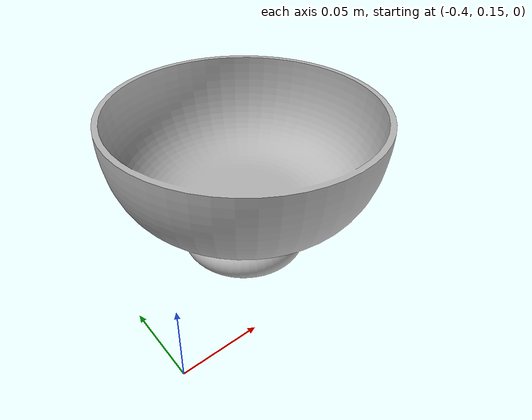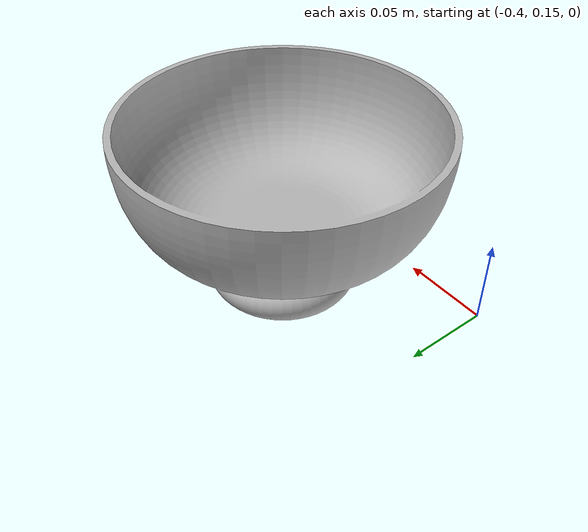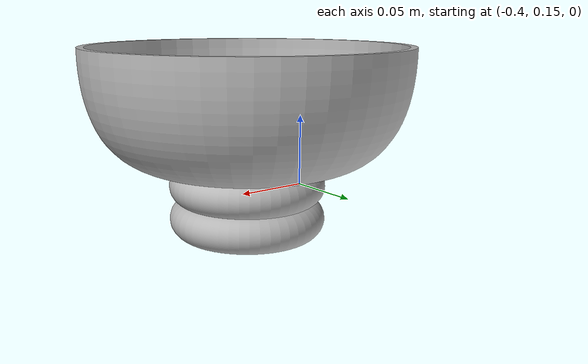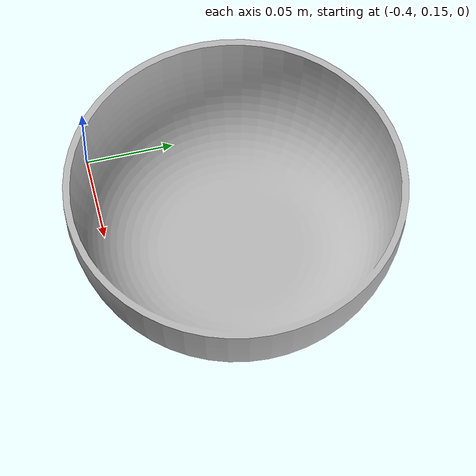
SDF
<?xml version="1.0" ?>
<sdf version="1.7">
	<model name="bowl">
		<link name="base">
			<visual name="bowl_visual">
				<pose>0 0 0 0 0 0</pose>
				<geometry>
					<mesh>
						<scale>1 1 1</scale>
						<uri>meshes/bowl.obj</uri>
					</mesh>
				</geometry>
			</visual>
		</link>
	</model>
</sdf>
